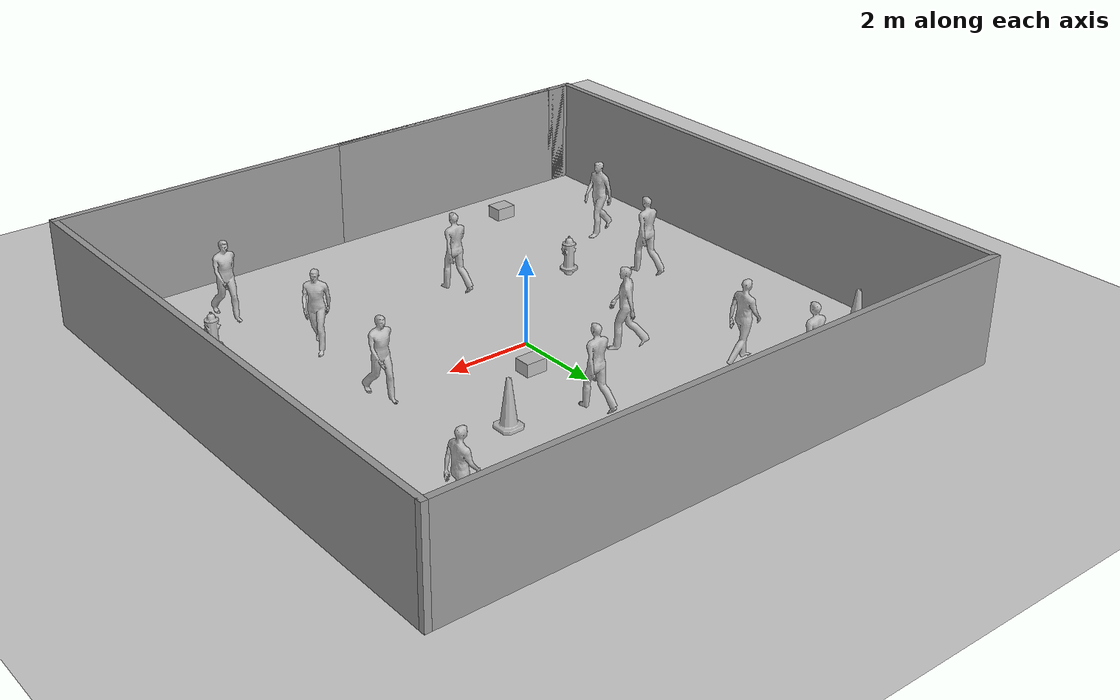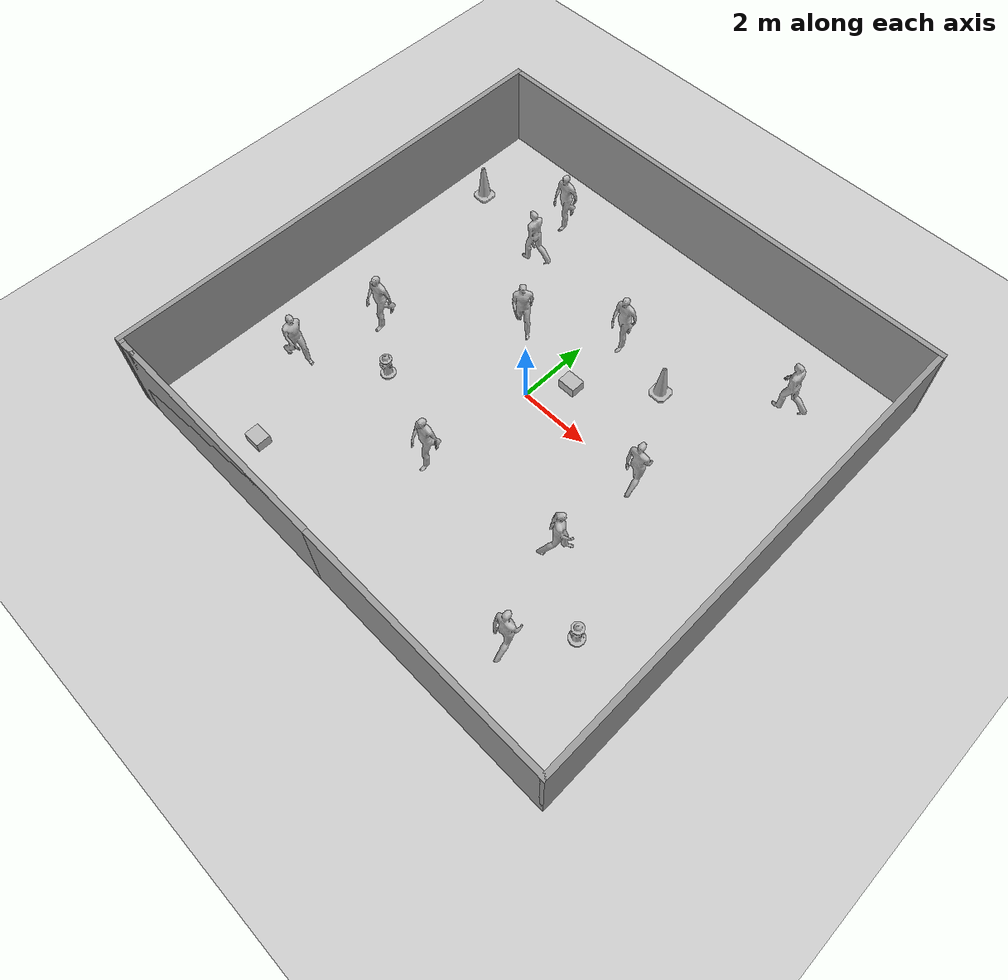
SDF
<sdf version="1.7">
 <world name="default">
  <light name="sun" type="directional">
   <pose>0 0 10 0 -0 0</pose>
   <diffuse>0.8 0.8 0.8 1</diffuse>
   <specular>0.2 0.2 0.2 1</specular>
   <attenuation>
    <range>1000</range>
    <constant>0.9</constant>
    <linear>0.01</linear>
    <quadratic>0.001</quadratic>
   </attenuation>
   <direction>-0.5 0.1 -0.9</direction>
   <spot><inner_angle>0</inner_angle><outer_angle>0</outer_angle><falloff>0</falloff></spot>
  </light>
  <model name="ground_plane">
   <static>1</static>
   <link name="link">
    <collision name="collision">
     <geometry><plane><normal>0 0 1</normal><size>100 100</size></plane></geometry>
     <surface><friction><ode><mu>100</mu><mu2>50</mu2></ode></friction></surface>
    </collision>
    <visual name="visual">
     <cast_shadows>0</cast_shadows>
     <geometry><plane><normal>0 0 1</normal><size>100 100</size></plane></geometry>
     <material>
      <script><uri>file://media/materials/scripts/gazebo.material</uri><name>Gazebo/Grey</name></script>
     </material>
    </visual>
   </link>
  </model>
  <gravity>0 0 -9.8</gravity>
  <magnetic_field>6e-06 2.3e-05 -4.2e-05</magnetic_field>
  <atmosphere type="adiabatic"/>
  <physics type="ode">
   <max_step_size>0.001</max_step_size>
   <real_time_factor>1</real_time_factor>
   <real_time_update_rate>1000</real_time_update_rate>
  </physics>
  <scene><ambient>0.4 0.4 0.4 1</ambient><background>0.7 0.7 0.7 1</background><shadows>1</shadows></scene>
  <spherical_coordinates>
   <surface_model>EARTH_WGS84</surface_model>
   <latitude_deg>0</latitude_deg>
   <longitude_deg>0</longitude_deg>
   <elevation>0</elevation>
   <heading_deg>0</heading_deg>
  </spherical_coordinates>
  <model name="new">
   <pose>0.229373 -0.14075 0 0 -0 0</pose>
   <link name="Wall_12">
    <collision name="Wall_12_Collision">
     <geometry><box><size>14 0.15 2.5</size></box></geometry>
     <pose>0 0 1.25 0 -0 0</pose>
    </collision>
    <visual name="Wall_12_Visual">
     <pose>0 0 1.25 0 -0 0</pose>
     <geometry><box><size>14 0.15 2.5</size></box></geometry>
     <material>
      <script><uri>file://media/materials/scripts/gazebo.material</uri><name>Gazebo/Grey</name></script>
      <ambient>1 1 1 1</ambient>
     </material>
     <meta><layer>0</layer></meta>
    </visual>
    <pose>0.125 -6.675 0 0 -0 0</pose>
   </link>
   <link name="Wall_13">
    <collision name="Wall_13_Collision">
     <geometry><box><size>13.5 0.15 2.5</size></box></geometry>
     <pose>0 0 1.25 0 -0 0</pose>
    </collision>
    <visual name="Wall_13_Visual">
     <pose>0 0 1.25 0 -0 0</pose>
     <geometry><box><size>13.5 0.15 2.5</size></box></geometry>
     <material>
      <script><uri>file://media/materials/scripts/gazebo.material</uri><name>Gazebo/Grey</name></script>
      <ambient>1 1 1 1</ambient>
     </material>
     <meta><layer>0</layer></meta>
    </visual>
    <pose>7.05 0 0 0 -0 1.5708</pose>
   </link>
   <link name="Wall_14">
    <collision name="Wall_14_Collision">
     <geometry><box><size>14.25 0.15 2.5</size></box></geometry>
     <pose>0 0 1.25 0 -0 0</pose>
    </collision>
    <visual name="Wall_14_Visual">
     <pose>0 0 1.25 0 -0 0</pose>
     <geometry><box><size>14.25 0.15 2.5</size></box></geometry>
     <material>
      <script><uri>file://media/materials/scripts/gazebo.material</uri><name>Gazebo/Grey</name></script>
      <ambient>1 1 1 1</ambient>
     </material>
     <meta><layer>0</layer></meta>
    </visual>
    <pose>0 6.675 0 0 -0 3.14159</pose>
   </link>
   <link name="Wall_15">
    <collision name="Wall_15_Collision">
     <geometry><box><size>13.5 0.15 2.5</size></box></geometry>
     <pose>0 0 1.25 0 -0 0</pose>
    </collision>
    <visual name="Wall_15_Visual">
     <pose>0 0 1.25 0 -0 0</pose>
     <geometry><box><size>13.5 0.15 2.5</size></box></geometry>
     <material>
      <script><uri>file://media/materials/scripts/gazebo.material</uri><name>Gazebo/Grey</name></script>
      <ambient>1 1 1 1</ambient>
     </material>
     <meta><layer>0</layer></meta>
    </visual>
    <pose>-7.05 0 0 0 -0 -1.5708</pose>
   </link>
   <link name="Wall_16">
    <collision name="Wall_16_Collision">
     <geometry><box><size>0.75 0.15 2.5</size></box></geometry>
     <pose>0 0 1.25 0 -0 0</pose>
    </collision>
    <visual name="Wall_16_Visual">
     <pose>0 0 1.25 0 -0 0</pose>
     <geometry><box><size>0.75 0.15 2.5</size></box></geometry>
     <material>
      <script><uri>file://media/materials/scripts/gazebo.material</uri><name>Gazebo/Grey</name></script>
      <ambient>1 1 1 1</ambient>
     </material>
     <meta><layer>0</layer></meta>
    </visual>
    <pose>-6.75 -6.675 0 0 -0 0</pose>
   </link>
   <link name="Wall_17">
    <collision name="Wall_17_Collision">
     <geometry><box><size>0.16 0.15 2.5</size></box></geometry>
     <pose>0 0 1.25 0 -0 0</pose>
    </collision>
    <visual name="Wall_17_Visual">
     <pose>0 0 1.25 0 -0 0</pose>
     <geometry><box><size>0.16 0.15 2.5</size></box></geometry>
     <material>
      <script><uri>file://media/materials/scripts/gazebo.material</uri><name>Gazebo/Grey</name></script>
      <ambient>1 1 1 1</ambient>
     </material>
     <meta><layer>0</layer></meta>
    </visual>
    <pose>-6.445 -6.675 0 0 -0 0</pose>
   </link>
   <link name="Wall_18">
    <collision name="Wall_18_Collision">
     <geometry><box><size>0.16 0.15 2.5</size></box></geometry>
     <pose>0 0 1.25 0 -0 0</pose>
    </collision>
    <visual name="Wall_18_Visual">
     <pose>0 0 1.25 0 -0 0</pose>
     <geometry><box><size>0.16 0.15 2.5</size></box></geometry>
     <material>
      <script><uri>file://media/materials/scripts/gazebo.material</uri><name>Gazebo/Grey</name></script>
      <ambient>1 1 1 1</ambient>
     </material>
     <meta><layer>0</layer></meta>
    </visual>
    <pose>-6.435 -6.675 0 0 -0 0</pose>
   </link>
   <link name="Wall_19">
    <collision name="Wall_19_Collision">
     <geometry><box><size>6.5 0.15 2.5</size></box></geometry>
     <pose>0 0 1.25 0 -0 0</pose>
    </collision>
    <visual name="Wall_19_Visual">
     <pose>0 0 1.25 0 -0 0</pose>
     <geometry><box><size>6.5 0.15 2.5</size></box></geometry>
     <material>
      <script><uri>file://media/materials/scripts/gazebo.material</uri><name>Gazebo/Grey</name></script>
      <ambient>1 1 1 1</ambient>
     </material>
     <meta><layer>0</layer></meta>
    </visual>
    <pose>-3.255 -6.675 0 0 -0 0</pose>
   </link>
   <static>1</static>
  </model>
  <model name="person_walking_0">
   <link name="link">
    <inertial>
     <pose>0 0 0.95 0 -0 0</pose>
     <mass>80</mass>
     <inertia><ixx>27.82</ixx><ixy>0</ixy><ixz>0</ixz><iyy>24.88</iyy><iyz>0</iyz><izz>4.57</izz></inertia>
    </inertial>
    <collision name="bottom">
     <pose>0 0 0.01 0 -0 0</pose>
     <geometry><box><size>0.35 0.75 0.02</size></box></geometry>
    </collision>
    <collision name="person">
     <pose>0 0 -0.02 0 -0 0</pose>
     <geometry><mesh><uri>model://person_walking/meshes/walking.dae</uri></mesh></geometry>
    </collision>
    <visual name="visual">
     <pose>0 0 -0.02 0 -0 0</pose>
     <geometry><mesh><uri>model://person_walking/meshes/walking.dae</uri></mesh></geometry>
    </visual>
   </link>
   <pose>-3 3.37 -1e-06 -2e-06 1e-06 -1.57077</pose>
  </model>
  <model name="person_walking_1">
   <link name="link">
    <inertial>
     <pose>0 0 0.95 0 -0 0</pose>
     <mass>80</mass>
     <inertia><ixx>27.82</ixx><ixy>0</ixy><ixz>0</ixz><iyy>24.88</iyy><iyz>0</iyz><izz>4.57</izz></inertia>
    </inertial>
    <collision name="bottom">
     <pose>0 0 0.01 0 -0 0</pose>
     <geometry><box><size>0.35 0.75 0.02</size></box></geometry>
    </collision>
    <collision name="person">
     <pose>0 0 -0.02 0 -0 0</pose>
     <geometry><mesh><uri>model://person_walking/meshes/walking.dae</uri></mesh></geometry>
    </collision>
    <visual name="visual">
     <pose>0 0 -0.02 0 -0 0</pose>
     <geometry><mesh><uri>model://person_walking/meshes/walking.dae</uri></mesh></geometry>
    </visual>
   </link>
   <pose>3.55452 -2.55452 -1e-06 -2e-06 1e-06 2.35623</pose>
  </model>
  <model name="person_walking_2">
   <link name="link">
    <inertial>
     <pose>0 0 0.95 0 -0 0</pose>
     <mass>80</mass>
     <inertia><ixx>27.82</ixx><ixy>0</ixy><ixz>0</ixz><iyy>24.88</iyy><iyz>0</iyz><izz>4.57</izz></inertia>
    </inertial>
    <collision name="bottom">
     <pose>0 0 0.01 0 -0 0</pose>
     <geometry><box><size>0.35 0.75 0.02</size></box></geometry>
    </collision>
    <collision name="person">
     <pose>0 0 -0.02 0 -0 0</pose>
     <geometry><mesh><uri>model://person_walking/meshes/walking.dae</uri></mesh></geometry>
    </collision>
    <visual name="visual">
     <pose>0 0 -0.02 0 -0 0</pose>
     <geometry><mesh><uri>model://person_walking/meshes/walking.dae</uri></mesh></geometry>
    </visual>
   </link>
   <pose>-0.37 -3 -1e-06 -2e-06 1e-06 2.9e-05</pose>
  </model>
  <model name="person_walking_3">
   <link name="link">
    <inertial>
     <pose>0 0 0.95 0 -0 0</pose>
     <mass>80</mass>
     <inertia><ixx>27.82</ixx><ixy>0</ixy><ixz>0</ixz><iyy>24.88</iyy><iyz>0</iyz><izz>4.57</izz></inertia>
    </inertial>
    <collision name="bottom">
     <pose>0 0 0.01 0 -0 0</pose>
     <geometry><box><size>0.35 0.75 0.02</size></box></geometry>
    </collision>
    <collision name="person">
     <pose>0 0 -0.02 0 -0 0</pose>
     <geometry><mesh><uri>model://person_walking/meshes/walking.dae</uri></mesh></geometry>
    </collision>
    <visual name="visual">
     <pose>0 0 -0.02 0 -0 0</pose>
     <geometry><mesh><uri>model://person_walking/meshes/walking.dae</uri></mesh></geometry>
    </visual>
   </link>
   <pose>-1.55452 1.44548 -1e-06 -2e-06 1e-06 0.785436</pose>
  </model>
  <model name="person_walking_4">
   <link name="link">
    <inertial>
     <pose>0 0 0.95 0 -0 0</pose>
     <mass>80</mass>
     <inertia><ixx>27.82</ixx><ixy>0</ixy><ixz>0</ixz><iyy>24.88</iyy><iyz>0</iyz><izz>4.57</izz></inertia>
    </inertial>
    <collision name="bottom">
     <pose>0 0 0.01 0 -0 0</pose>
     <geometry><box><size>0.35 0.75 0.02</size></box></geometry>
    </collision>
    <collision name="person">
     <pose>0 0 -0.02 0 -0 0</pose>
     <geometry><mesh><uri>model://person_walking/meshes/walking.dae</uri></mesh></geometry>
    </collision>
    <visual name="visual">
     <pose>0 0 -0.02 0 -0 0</pose>
     <geometry><mesh><uri>model://person_walking/meshes/walking.dae</uri></mesh></geometry>
    </visual>
   </link>
   <pose>5 4.37 -1e-06 -2e-06 1e-06 -1.57077</pose>
  </model>
  <model name="person_walking_5">
   <link name="link">
    <inertial>
     <pose>0 0 0.95 0 -0 0</pose>
     <mass>80</mass>
     <inertia><ixx>27.82</ixx><ixy>0</ixy><ixz>0</ixz><iyy>24.88</iyy><iyz>0</iyz><izz>4.57</izz></inertia>
    </inertial>
    <collision name="bottom">
     <pose>0 0 0.01 0 -0 0</pose>
     <geometry><box><size>0.35 0.75 0.02</size></box></geometry>
    </collision>
    <collision name="person">
     <pose>0 0 -0.02 0 -0 0</pose>
     <geometry><mesh><uri>model://person_walking/meshes/walking.dae</uri></mesh></geometry>
    </collision>
    <visual name="visual">
     <pose>0 0 -0.02 0 -0 0</pose>
     <geometry><mesh><uri>model://person_walking/meshes/walking.dae</uri></mesh></geometry>
    </visual>
   </link>
   <pose>0.63 3 -1e-06 -2e-06 1e-06 2.9e-05</pose>
  </model>
  <model name="person_walking_6">
   <link name="link">
    <inertial>
     <pose>0 0 0.95 0 -0 0</pose>
     <mass>80</mass>
     <inertia><ixx>27.82</ixx><ixy>0</ixy><ixz>0</ixz><iyy>24.88</iyy><iyz>0</iyz><izz>4.57</izz></inertia>
    </inertial>
    <collision name="bottom">
     <pose>0 0 0.01 0 -0 0</pose>
     <geometry><box><size>0.35 0.75 0.02</size></box></geometry>
    </collision>
    <collision name="person">
     <pose>0 0 -0.02 0 -0 0</pose>
     <geometry><mesh><uri>model://person_walking/meshes/walking.dae</uri></mesh></geometry>
    </collision>
    <visual name="visual">
     <pose>0 0 -0.02 0 -0 0</pose>
     <geometry><mesh><uri>model://person_walking/meshes/walking.dae</uri></mesh></geometry>
    </visual>
   </link>
   <pose>-5 -3.37 -1e-06 -2e-06 1e-06 1.57083</pose>
  </model>
  <model name="person_walking_7">
   <link name="link">
    <inertial>
     <pose>0 0 0.95 0 -0 0</pose>
     <mass>80</mass>
     <inertia><ixx>27.82</ixx><ixy>0</ixy><ixz>0</ixz><iyy>24.88</iyy><iyz>0</iyz><izz>4.57</izz></inertia>
    </inertial>
    <collision name="bottom">
     <pose>0 0 0.01 0 -0 0</pose>
     <geometry><box><size>0.35 0.75 0.02</size></box></geometry>
    </collision>
    <collision name="person">
     <pose>0 0 -0.02 0 -0 0</pose>
     <geometry><mesh><uri>model://person_walking/meshes/walking.dae</uri></mesh></geometry>
    </collision>
    <visual name="visual">
     <pose>0 0 -0.02 0 -0 0</pose>
     <geometry><mesh><uri>model://person_walking/meshes/walking.dae</uri></mesh></geometry>
    </visual>
   </link>
   <pose>-3.37 5 -1e-06 -2e-06 1e-06 2.9e-05</pose>
  </model>
  <model name="person_walking_8">
   <link name="link">
    <inertial>
     <pose>0 0 0.95 0 -0 0</pose>
     <mass>80</mass>
     <inertia><ixx>27.82</ixx><ixy>0</ixy><ixz>0</ixz><iyy>24.88</iyy><iyz>0</iyz><izz>4.57</izz></inertia>
    </inertial>
    <collision name="bottom">
     <pose>0 0 0.01 0 -0 0</pose>
     <geometry><box><size>0.35 0.75 0.02</size></box></geometry>
    </collision>
    <collision name="person">
     <pose>0 0 -0.02 0 -0 0</pose>
     <geometry><mesh><uri>model://person_walking/meshes/walking.dae</uri></mesh></geometry>
    </collision>
    <visual name="visual">
     <pose>0 0 -0.02 0 -0 0</pose>
     <geometry><mesh><uri>model://person_walking/meshes/walking.dae</uri></mesh></geometry>
    </visual>
   </link>
   <pose>-4.37 -1 -1e-06 -2e-06 1e-06 2.9e-05</pose>
  </model>
  <model name="person_walking_9">
   <link name="link">
    <inertial>
     <pose>0 0 0.95 0 -0 0</pose>
     <mass>80</mass>
     <inertia><ixx>27.82</ixx><ixy>0</ixy><ixz>0</ixz><iyy>24.88</iyy><iyz>0</iyz><izz>4.57</izz></inertia>
    </inertial>
    <collision name="bottom">
     <pose>0 0 0.01 0 -0 0</pose>
     <geometry><box><size>0.35 0.75 0.02</size></box></geometry>
    </collision>
    <collision name="person">
     <pose>0 0 -0.02 0 -0 0</pose>
     <geometry><mesh><uri>model://person_walking/meshes/walking.dae</uri></mesh></geometry>
    </collision>
    <visual name="visual">
     <pose>0 0 -0.02 0 -0 0</pose>
     <geometry><mesh><uri>model://person_walking/meshes/walking.dae</uri></mesh></geometry>
    </visual>
   </link>
   <pose>4.37 -5 -1e-06 -2e-06 1e-06 -3.14156</pose>
  </model>
  <model name="person_walking_10">
   <link name="link">
    <inertial>
     <pose>0 0 0.95 0 -0 0</pose>
     <mass>80</mass>
     <inertia><ixx>27.82</ixx><ixy>0</ixy><ixz>0</ixz><iyy>24.88</iyy><iyz>0</iyz><izz>4.57</izz></inertia>
    </inertial>
    <collision name="bottom">
     <pose>0 0 0.01 0 -0 0</pose>
     <geometry><box><size>0.35 0.75 0.02</size></box></geometry>
    </collision>
    <collision name="person">
     <pose>0 0 -0.02 0 -0 0</pose>
     <geometry><mesh><uri>model://person_walking/meshes/walking.dae</uri></mesh></geometry>
    </collision>
    <visual name="visual">
     <pose>0 0 -0.02 0 -0 0</pose>
     <geometry><mesh><uri>model://person_walking/meshes/walking.dae</uri></mesh></geometry>
    </visual>
   </link>
   <pose>3.7 -0 -1e-06 -2e-06 1e-06 -3.1413</pose>
  </model>
  <model name="Construction Cone">
   <link name="link">
    <collision name="collision">
     <geometry>
      <mesh><scale>10 10 10</scale><uri>model://construction_cone/meshes/construction_cone.dae</uri></mesh>
     </geometry>
    </collision>
    <visual name="visual">
     <geometry>
      <mesh><scale>10 10 10</scale><uri>model://construction_cone/meshes/construction_cone.dae</uri></mesh>
     </geometry>
    </visual>
    <inertial>
     <inertia><ixx>1</ixx><ixy>0</ixy><ixz>0</ixz><iyy>1</iyy><iyz>0</iyz><izz>1</izz></inertia>
     <mass>1</mass>
    </inertial>
   </link>
   <pose>-5.77579 4.06587 0 0 -0 0</pose>
  </model>
  <model name="fire_hydrant">
   <static>1</static>
   <link name="link">
    <collision name="collision">
     <geometry><mesh><uri>model://fire_hydrant/meshes/fire_hydrant.dae</uri></mesh></geometry>
    </collision>
    <visual name="visual">
     <geometry><mesh><uri>model://fire_hydrant/meshes/fire_hydrant.dae</uri></mesh></geometry>
    </visual>
   </link>
   <pose>-2.94462 -2.09117 0 0 -0 0</pose>
  </model>
  <model name="Construction Cone_0">
   <link name="link">
    <collision name="collision">
     <geometry>
      <mesh><scale>10 10 10</scale><uri>model://construction_cone/meshes/construction_cone.dae</uri></mesh>
     </geometry>
    </collision>
    <visual name="visual">
     <geometry>
      <mesh><scale>10 10 10</scale><uri>model://construction_cone/meshes/construction_cone.dae</uri></mesh>
     </geometry>
    </visual>
    <inertial>
     <inertia><ixx>1</ixx><ixy>0</ixy><ixz>0</ixz><iyy>1</iyy><iyz>0</iyz><izz>1</izz></inertia>
     <mass>1</mass>
    </inertial>
   </link>
   <pose>2.40541 2.46445 0 0 -0 0</pose>
  </model>
  <model name="cardboard_box">
   <pose>0.653967 0.980124 0.15 0 -0 0</pose>
   <link name="link">
    <inertial>
     <mass>2</mass>
     <inertia>
      <ixx>0.0416667</ixx>
      <ixy>0</ixy>
      <ixz>0</ixz>
      <iyy>0.0566667</iyy>
      <iyz>0</iyz>
      <izz>0.0683333</izz>
     </inertia>
    </inertial>
    <collision name="collision">
     <geometry><box><size>0.5 0.4 0.3</size></box></geometry>
     <surface>
      <friction><ode><mu>1</mu><mu2>1</mu2></ode></friction>
      <contact><ode><kp>1e+07</kp><kd>1</kd><min_depth>0.001</min_depth><max_vel>0.1</max_vel></ode></contact>
     </surface>
    </collision>
    <visual name="visual">
     <pose>0 0 -0.15 0 -0 0</pose>
     <geometry>
      <mesh><uri>model://cardboard_box/meshes/cardboard_box.dae</uri><scale>1.25932 1.00745 0.755591</scale></mesh>
     </geometry>
    </visual>
   </link>
  </model>
  <model name="cardboard_box_0">
   <pose>-3.74295 -5.65184 0.15 0 -0 0</pose>
   <link name="link">
    <inertial>
     <mass>2</mass>
     <inertia>
      <ixx>0.0416667</ixx>
      <ixy>0</ixy>
      <ixz>0</ixz>
      <iyy>0.0566667</iyy>
      <iyz>0</iyz>
      <izz>0.0683333</izz>
     </inertia>
    </inertial>
    <collision name="collision">
     <geometry><box><size>0.5 0.4 0.3</size></box></geometry>
     <surface>
      <friction><ode><mu>1</mu><mu2>1</mu2></ode></friction>
      <contact><ode><kp>1e+07</kp><kd>1</kd><min_depth>0.001</min_depth><max_vel>0.1</max_vel></ode></contact>
     </surface>
    </collision>
    <visual name="visual">
     <pose>0 0 -0.15 0 -0 0</pose>
     <geometry>
      <mesh><uri>model://cardboard_box/meshes/cardboard_box.dae</uri><scale>1.25932 1.00745 0.755591</scale></mesh>
     </geometry>
    </visual>
   </link>
  </model>
  <model name="fire_hydrant_0">
   <static>1</static>
   <link name="link">
    <collision name="collision">
     <geometry><mesh><uri>model://fire_hydrant/meshes/fire_hydrant.dae</uri></mesh></geometry>
    </collision>
    <visual name="visual">
     <geometry><mesh><uri>model://fire_hydrant/meshes/fire_hydrant.dae</uri></mesh></geometry>
    </visual>
   </link>
   <pose>5.37292 -3.79637 0 0 -0 0</pose>
  </model>
 </world>
</sdf>
